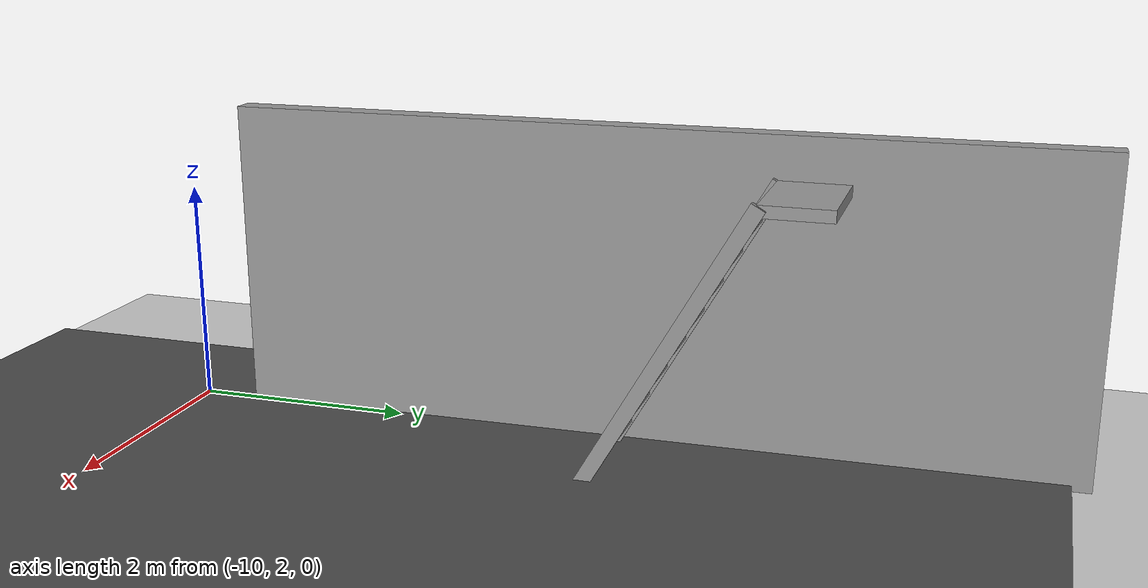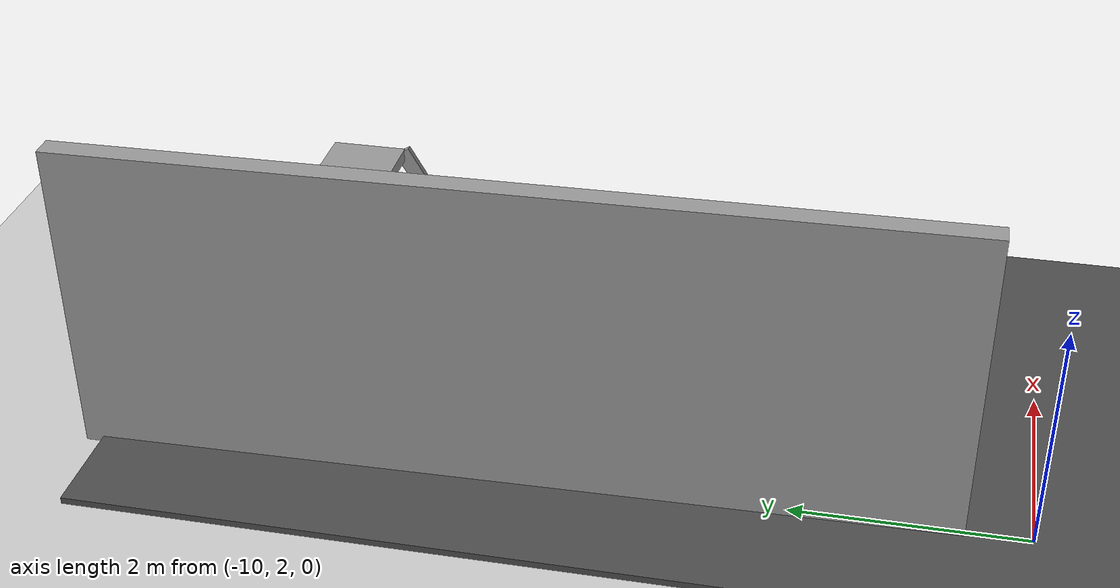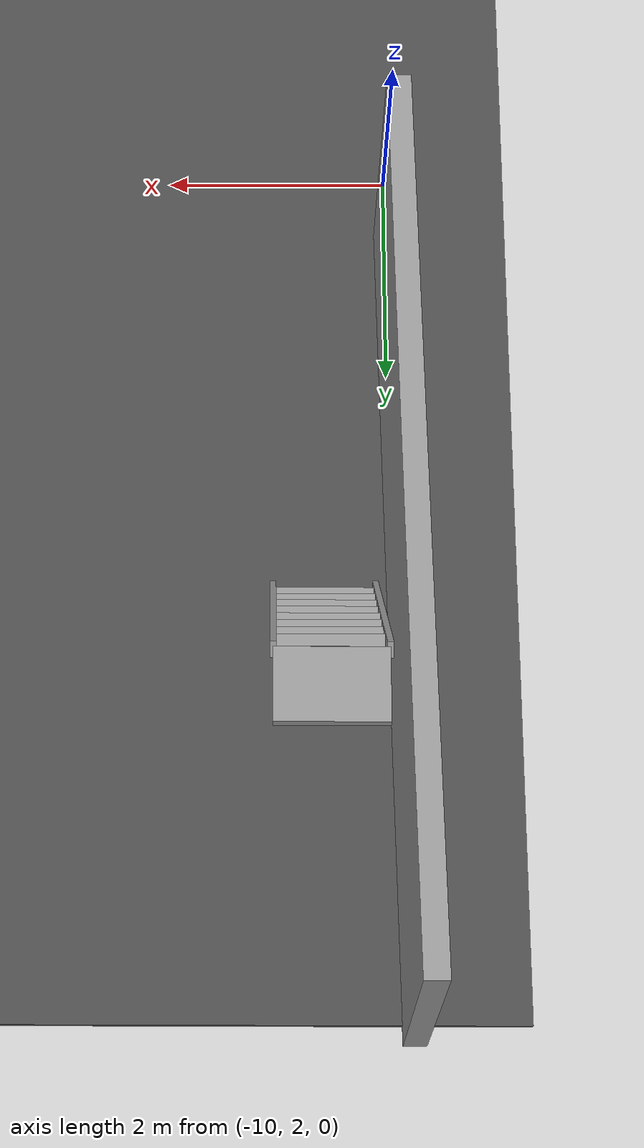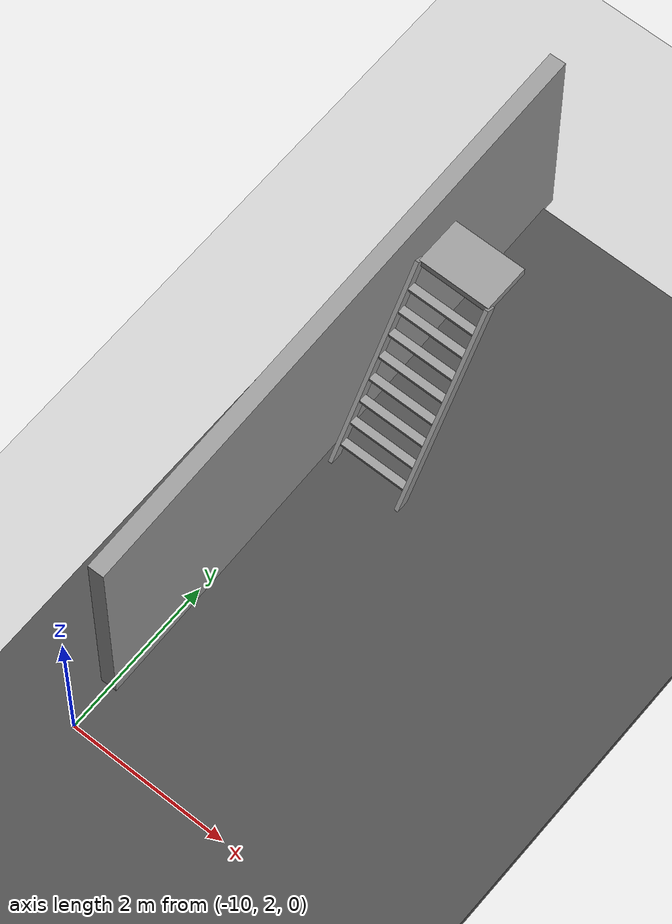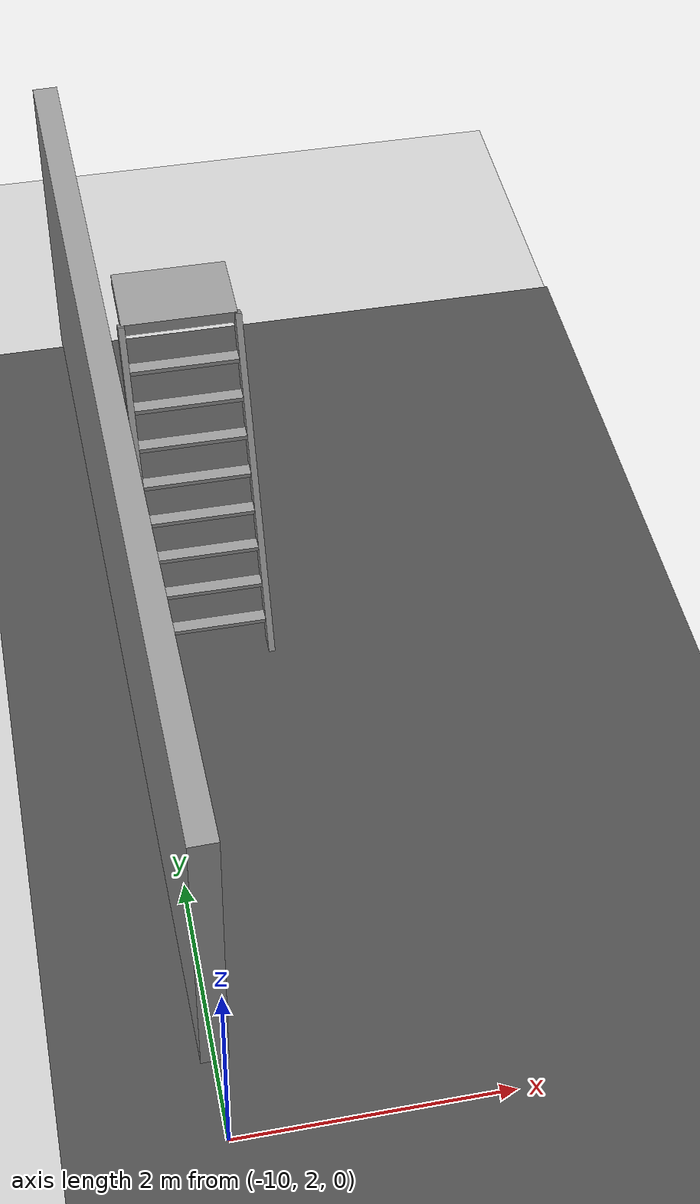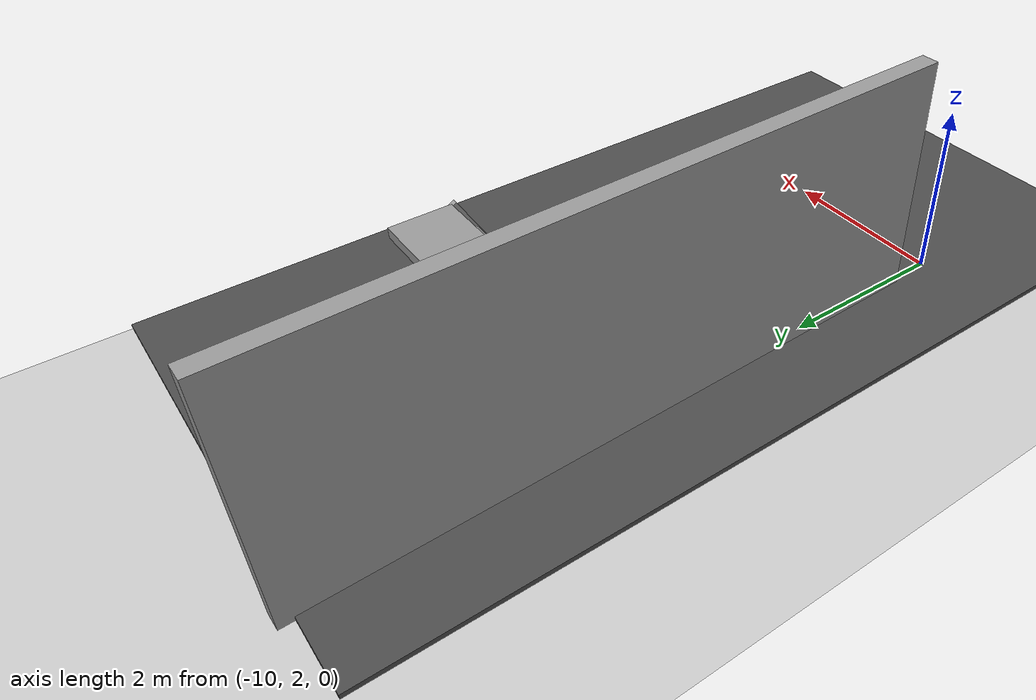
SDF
<sdf version="1.4">
 <world name="default">
  <model name="grey_wall_5">
   <static>1</static>
   <link name="link">
    <pose>0 0 1.4 0 -0 0</pose>
    <collision name="collision"><geometry><box><size>7.5 0.2 2.8</size></box></geometry></collision>
    <visual name="visual">
     <cast_shadows>0</cast_shadows>
     <geometry><box><size>7.5 0.2 2.8</size></box></geometry>
     <material>
      <script>
       <uri>model://grey_wall/materials/scripts</uri>
       <uri>model://grey_wall/materials/textures</uri>
       <name>vrc/grey_wall</name>
      </script>
     </material>
    </visual>
    <velocity_decay><linear>0</linear><angular>0</angular></velocity_decay>
   </link>
   <pose>-10.0754 6.30723 0 0 0 -1.55133</pose>
  </model>
  <model name="ladder_60deg_0rails">
   <static>1</static>
   <link name="step0">
    <pose>0 0.15396 0.266667 0 -0 0</pose>
    <inertial>
     <mass>9.75482</mass>
     <inertia>
      <ixx>0.00957124</ixx>
      <iyy>0.65963</iyy>
      <izz>0.666842</izz>
      <ixy>0</ixy>
      <ixz>0</ixz>
      <iyz>0</iyz>
     </inertia>
    </inertial>
    <collision name="collision"><geometry><box><size>0.9 0.1016 0.0381</size></box></geometry></collision>
    <visual name="visual">
     <geometry><box><size>0.9 0.1016 0.0381</size></box></geometry>
     <material>
      <script><uri>file://media/materials/scripts/gazebo.material</uri><name>Gazebo/Grey</name></script>
     </material>
    </visual>
    <velocity_decay><linear>0</linear><angular>0</angular></velocity_decay>
   </link>
   <link name="step1">
    <pose>0 0.30792 0.533333 0 -0 0</pose>
    <inertial>
     <mass>9.75482</mass>
     <inertia>
      <ixx>0.00957124</ixx>
      <iyy>0.65963</iyy>
      <izz>0.666842</izz>
      <ixy>0</ixy>
      <ixz>0</ixz>
      <iyz>0</iyz>
     </inertia>
    </inertial>
    <collision name="collision"><geometry><box><size>0.9 0.1016 0.0381</size></box></geometry></collision>
    <visual name="visual">
     <geometry><box><size>0.9 0.1016 0.0381</size></box></geometry>
     <material>
      <script><uri>file://media/materials/scripts/gazebo.material</uri><name>Gazebo/Grey</name></script>
     </material>
    </visual>
    <velocity_decay><linear>0</linear><angular>0</angular></velocity_decay>
   </link>
   <link name="step2">
    <pose>0 0.46188 0.8 0 -0 0</pose>
    <inertial>
     <mass>9.75482</mass>
     <inertia>
      <ixx>0.00957124</ixx>
      <iyy>0.65963</iyy>
      <izz>0.666842</izz>
      <ixy>0</ixy>
      <ixz>0</ixz>
      <iyz>0</iyz>
     </inertia>
    </inertial>
    <collision name="collision"><geometry><box><size>0.9 0.1016 0.0381</size></box></geometry></collision>
    <visual name="visual">
     <geometry><box><size>0.9 0.1016 0.0381</size></box></geometry>
     <material>
      <script><uri>file://media/materials/scripts/gazebo.material</uri><name>Gazebo/Grey</name></script>
     </material>
    </visual>
    <velocity_decay><linear>0</linear><angular>0</angular></velocity_decay>
   </link>
   <link name="step3">
    <pose>0 0.61584 1.06667 0 -0 0</pose>
    <inertial>
     <mass>9.75482</mass>
     <inertia>
      <ixx>0.00957124</ixx>
      <iyy>0.65963</iyy>
      <izz>0.666842</izz>
      <ixy>0</ixy>
      <ixz>0</ixz>
      <iyz>0</iyz>
     </inertia>
    </inertial>
    <collision name="collision"><geometry><box><size>0.9 0.1016 0.0381</size></box></geometry></collision>
    <visual name="visual">
     <geometry><box><size>0.9 0.1016 0.0381</size></box></geometry>
     <material>
      <script><uri>file://media/materials/scripts/gazebo.material</uri><name>Gazebo/Grey</name></script>
     </material>
    </visual>
    <velocity_decay><linear>0</linear><angular>0</angular></velocity_decay>
   </link>
   <link name="step4">
    <pose>0 0.7698 1.33333 0 -0 0</pose>
    <inertial>
     <mass>9.75482</mass>
     <inertia>
      <ixx>0.00957124</ixx>
      <iyy>0.65963</iyy>
      <izz>0.666842</izz>
      <ixy>0</ixy>
      <ixz>0</ixz>
      <iyz>0</iyz>
     </inertia>
    </inertial>
    <collision name="collision"><geometry><box><size>0.9 0.1016 0.0381</size></box></geometry></collision>
    <visual name="visual">
     <geometry><box><size>0.9 0.1016 0.0381</size></box></geometry>
     <material>
      <script><uri>file://media/materials/scripts/gazebo.material</uri><name>Gazebo/Grey</name></script>
     </material>
    </visual>
    <velocity_decay><linear>0</linear><angular>0</angular></velocity_decay>
   </link>
   <link name="step5">
    <pose>0 0.92376 1.6 0 -0 0</pose>
    <inertial>
     <mass>9.75482</mass>
     <inertia>
      <ixx>0.00957124</ixx>
      <iyy>0.65963</iyy>
      <izz>0.666842</izz>
      <ixy>0</ixy>
      <ixz>0</ixz>
      <iyz>0</iyz>
     </inertia>
    </inertial>
    <collision name="collision"><geometry><box><size>0.9 0.1016 0.0381</size></box></geometry></collision>
    <visual name="visual">
     <geometry><box><size>0.9 0.1016 0.0381</size></box></geometry>
     <material>
      <script><uri>file://media/materials/scripts/gazebo.material</uri><name>Gazebo/Grey</name></script>
     </material>
    </visual>
    <velocity_decay><linear>0</linear><angular>0</angular></velocity_decay>
   </link>
   <link name="step6">
    <pose>0 1.07772 1.86667 0 -0 0</pose>
    <inertial>
     <mass>9.75482</mass>
     <inertia>
      <ixx>0.00957124</ixx>
      <iyy>0.65963</iyy>
      <izz>0.666842</izz>
      <ixy>0</ixy>
      <ixz>0</ixz>
      <iyz>0</iyz>
     </inertia>
    </inertial>
    <collision name="collision"><geometry><box><size>0.9 0.1016 0.0381</size></box></geometry></collision>
    <visual name="visual">
     <geometry><box><size>0.9 0.1016 0.0381</size></box></geometry>
     <material>
      <script><uri>file://media/materials/scripts/gazebo.material</uri><name>Gazebo/Grey</name></script>
     </material>
    </visual>
    <velocity_decay><linear>0</linear><angular>0</angular></velocity_decay>
   </link>
   <link name="step7">
    <pose>0 1.23168 2.13333 0 -0 0</pose>
    <inertial>
     <mass>9.75482</mass>
     <inertia>
      <ixx>0.00957124</ixx>
      <iyy>0.65963</iyy>
      <izz>0.666842</izz>
      <ixy>0</ixy>
      <ixz>0</ixz>
      <iyz>0</iyz>
     </inertia>
    </inertial>
    <collision name="collision"><geometry><box><size>0.9 0.1016 0.0381</size></box></geometry></collision>
    <visual name="visual">
     <geometry><box><size>0.9 0.1016 0.0381</size></box></geometry>
     <material>
      <script><uri>file://media/materials/scripts/gazebo.material</uri><name>Gazebo/Grey</name></script>
     </material>
    </visual>
    <velocity_decay><linear>0</linear><angular>0</angular></velocity_decay>
   </link>
   <link name="landing">
    <pose>0 1.68564 2.4 0 -0 0</pose>
    <inertial>
     <mass>57.6072</mass>
     <inertia><ixx>1.73518</ixx><iyy>3.89545</iyy><izz>5.6167</izz><ixy>0</ixy><ixz>0</ixz><iyz>0</iyz></inertia>
    </inertial>
    <collision name="collision"><geometry><box><size>0.9 0.6 0.1016</size></box></geometry></collision>
    <visual name="visual">
     <geometry><box><size>0.9 0.6 0.1016</size></box></geometry>
     <material>
      <script><uri>file://media/materials/scripts/gazebo.material</uri><name>Gazebo/Grey</name></script>
     </material>
    </visual>
    <velocity_decay><linear>0</linear><angular>0</angular></velocity_decay>
   </link>
   <link name="left_side_wall">
    <pose>-0.45 0.69282 1.2 1.0472 -0 0</pose>
    <collision name="collision"><geometry><box><size>0.0508 2.85128 0.13</size></box></geometry></collision>
    <visual name="visual">
     <geometry><box><size>0.0508 2.85128 0.13</size></box></geometry>
     <material>
      <script><uri>file://media/materials/scripts/gazebo.material</uri><name>Gazebo/Grey</name></script>
     </material>
    </visual>
    <velocity_decay><linear>0</linear><angular>0</angular></velocity_decay>
   </link>
   <link name="right_side_wall">
    <pose>0.45 0.69282 1.2 1.0472 -0 0</pose>
    <collision name="collision"><geometry><box><size>0.0508 2.85128 0.13</size></box></geometry></collision>
    <visual name="visual">
     <geometry><box><size>0.0508 2.85128 0.13</size></box></geometry>
     <material>
      <script><uri>file://media/materials/scripts/gazebo.material</uri><name>Gazebo/Grey</name></script>
     </material>
    </visual>
    <velocity_decay><linear>0</linear><angular>0</angular></velocity_decay>
   </link>
   <pose>-9.42459 6.04484 0 0 -0 0</pose>
  </model>
  <model name="ground_plane">
   <static>1</static>
   <link name="link">
    <collision name="collision">
     <geometry><plane><normal>0 0 1</normal><size>100 100</size></plane></geometry>
     <surface><friction><ode><mu>100</mu><mu2>50</mu2></ode></friction></surface>
    </collision>
    <visual name="visual">
     <cast_shadows>0</cast_shadows>
     <geometry><plane><normal>0 0 1</normal><size>100 100</size></plane></geometry>
     <material>
      <script><uri>file://media/materials/scripts/gazebo.material</uri><name>Gazebo/Grey</name></script>
     </material>
    </visual>
    <velocity_decay><linear>0</linear><angular>0</angular></velocity_decay>
   </link>
   <pose>-5 8 0 0 -0 0</pose>
  </model>
  <model name="asphalt_plane">
   <static>1</static>
   <link name="link">
    <collision name="collision"><geometry><box><size>20 20 0.1</size></box></geometry></collision>
    <visual name="visual">
     <cast_shadows>0</cast_shadows>
     <geometry><box><size>20 20 0.1</size></box></geometry>
     <material>
      <script>
       <uri>model://asphalt_plane/materials/scripts</uri>
       <uri>model://asphalt_plane/materials/textures</uri>
       <name>vrc/asphalt</name>
      </script>
     </material>
    </visual>
    <velocity_decay><linear>0</linear><angular>0</angular></velocity_decay>
   </link>
   <pose>-1.12078 -0.103901 0 0 -0 0</pose>
  </model>
 </world>
</sdf>
